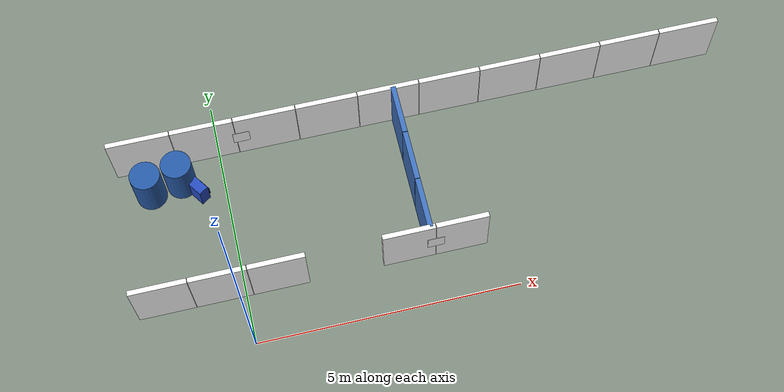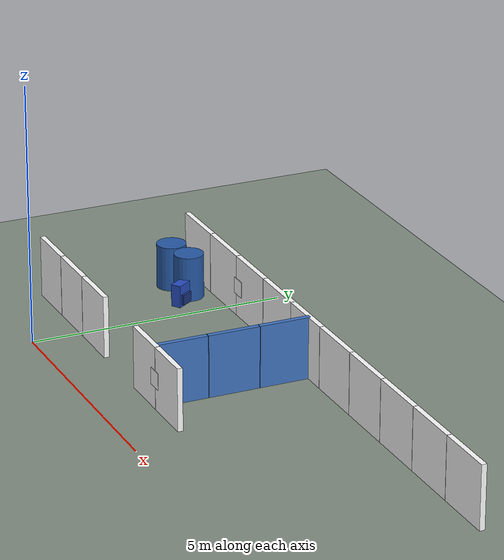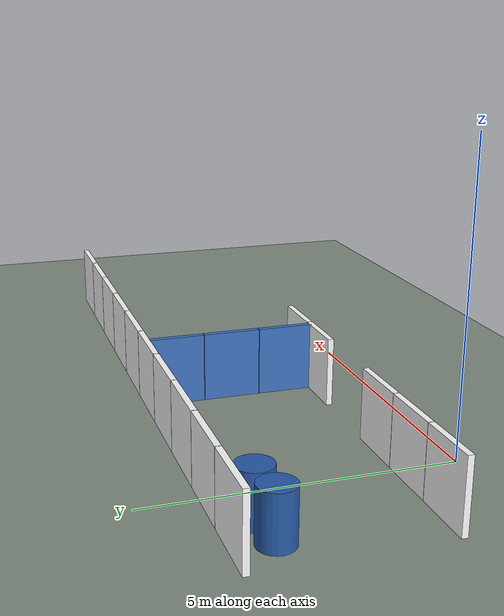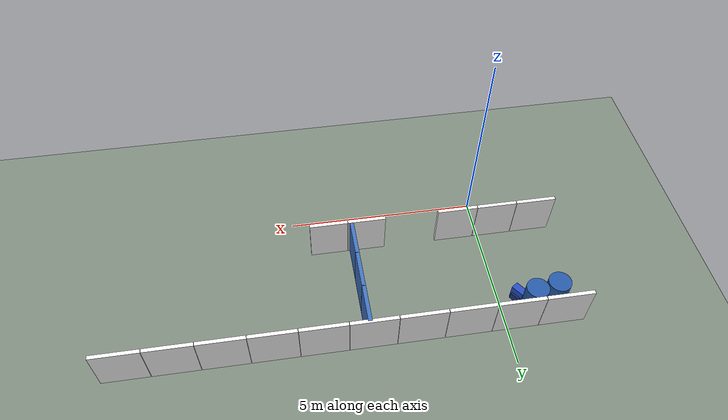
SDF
<sdf version="1.9">
 <world name="rescue_maze">
  <model name="ground_plane">
   <static>true</static>
   <link name="link">
    <collision name="collision">
     <geometry><plane><normal>0 0 1</normal><size>40 40</size></plane></geometry>
    </collision>
    <visual name="visual">
     <geometry><plane><normal>0 0 1</normal><size>40 40</size></plane></geometry>
     <material><ambient>0.5 0.55 0.5 1</ambient><diffuse>0.5 0.55 0.5 1</diffuse></material>
    </visual>
   </link>
  </model>
  <model name="wall_0">
   <static>true</static>
   <pose>4.000 4.000 0.6 0 0 0.0000</pose>
   <link name="link">
    <collision name="collision"><geometry><box><size>12.000 0.1 1.2</size></box></geometry></collision>
    <visual name="panel_0">
     <pose>-5.400 0 0 0 0 0</pose>
     <geometry><box><size>1.190 0.1 1.2</size></box></geometry>
     <material>
      <diffuse>1 1 1 1</diffuse>
      <specular>0.1 0.1 0.1 1</specular>
      <pbr>
       <metal><albedo_map>textures/plywood.jpg</albedo_map><roughness>0.9</roughness><metalness>0</metalness></metal>
      </pbr>
     </material>
    </visual>
    <visual name="panel_1">
     <pose>-4.200 0 0 0 0 0</pose>
     <geometry><box><size>1.190 0.1 1.2</size></box></geometry>
     <material>
      <diffuse>1 1 1 1</diffuse>
      <specular>0.1 0.1 0.1 1</specular>
      <pbr>
       <metal><albedo_map>textures/plywood.jpg</albedo_map><roughness>0.9</roughness><metalness>0</metalness></metal>
      </pbr>
     </material>
    </visual>
    <visual name="panel_2">
     <pose>-3.000 0 0 0 0 0</pose>
     <geometry><box><size>1.190 0.1 1.2</size></box></geometry>
     <material>
      <diffuse>1 1 1 1</diffuse>
      <specular>0.1 0.1 0.1 1</specular>
      <pbr>
       <metal><albedo_map>textures/plywood.jpg</albedo_map><roughness>0.9</roughness><metalness>0</metalness></metal>
      </pbr>
     </material>
    </visual>
    <visual name="panel_3">
     <pose>-1.800 0 0 0 0 0</pose>
     <geometry><box><size>1.190 0.1 1.2</size></box></geometry>
     <material>
      <diffuse>1 1 1 1</diffuse>
      <specular>0.1 0.1 0.1 1</specular>
      <pbr>
       <metal><albedo_map>textures/plywood.jpg</albedo_map><roughness>0.9</roughness><metalness>0</metalness></metal>
      </pbr>
     </material>
    </visual>
    <visual name="panel_4">
     <pose>-0.600 0 0 0 0 0</pose>
     <geometry><box><size>1.190 0.1 1.2</size></box></geometry>
     <material>
      <diffuse>1 1 1 1</diffuse>
      <specular>0.1 0.1 0.1 1</specular>
      <pbr>
       <metal><albedo_map>textures/plywood.jpg</albedo_map><roughness>0.9</roughness><metalness>0</metalness></metal>
      </pbr>
     </material>
    </visual>
    <visual name="panel_5">
     <pose>0.600 0 0 0 0 0</pose>
     <geometry><box><size>1.190 0.1 1.2</size></box></geometry>
     <material>
      <diffuse>1 1 1 1</diffuse>
      <specular>0.1 0.1 0.1 1</specular>
      <pbr>
       <metal><albedo_map>textures/plywood.jpg</albedo_map><roughness>0.9</roughness><metalness>0</metalness></metal>
      </pbr>
     </material>
    </visual>
    <visual name="panel_6">
     <pose>1.800 0 0 0 0 0</pose>
     <geometry><box><size>1.190 0.1 1.2</size></box></geometry>
     <material>
      <diffuse>1 1 1 1</diffuse>
      <specular>0.1 0.1 0.1 1</specular>
      <pbr>
       <metal><albedo_map>textures/plywood.jpg</albedo_map><roughness>0.9</roughness><metalness>0</metalness></metal>
      </pbr>
     </material>
    </visual>
    <visual name="panel_7">
     <pose>3.000 0 0 0 0 0</pose>
     <geometry><box><size>1.190 0.1 1.2</size></box></geometry>
     <material>
      <diffuse>1 1 1 1</diffuse>
      <specular>0.1 0.1 0.1 1</specular>
      <pbr>
       <metal><albedo_map>textures/plywood.jpg</albedo_map><roughness>0.9</roughness><metalness>0</metalness></metal>
      </pbr>
     </material>
    </visual>
    <visual name="panel_8">
     <pose>4.200 0 0 0 0 0</pose>
     <geometry><box><size>1.190 0.1 1.2</size></box></geometry>
     <material>
      <diffuse>1 1 1 1</diffuse>
      <specular>0.1 0.1 0.1 1</specular>
      <pbr>
       <metal><albedo_map>textures/plywood.jpg</albedo_map><roughness>0.9</roughness><metalness>0</metalness></metal>
      </pbr>
     </material>
    </visual>
    <visual name="panel_9">
     <pose>5.400 0 0 0 0 0</pose>
     <geometry><box><size>1.190 0.1 1.2</size></box></geometry>
     <material>
      <diffuse>1 1 1 1</diffuse>
      <specular>0.1 0.1 0.1 1</specular>
      <pbr>
       <metal><albedo_map>textures/plywood.jpg</albedo_map><roughness>0.9</roughness><metalness>0</metalness></metal>
      </pbr>
     </material>
    </visual>
   </link>
  </model>
  <model name="wall_4">
   <static>true</static>
   <pose>-0.400 1.000 0.6 0 0 0.0000</pose>
   <link name="link">
    <collision name="collision"><geometry><box><size>3.200 0.1 1.2</size></box></geometry></collision>
    <visual name="panel_0">
     <pose>-1.067 0 0 0 0 0</pose>
     <geometry><box><size>1.057 0.1 1.2</size></box></geometry>
     <material>
      <diffuse>1 1 1 1</diffuse>
      <specular>0.1 0.1 0.1 1</specular>
      <pbr>
       <metal><albedo_map>textures/plywood.jpg</albedo_map><roughness>0.9</roughness><metalness>0</metalness></metal>
      </pbr>
     </material>
    </visual>
    <visual name="panel_1">
     <geometry><box><size>1.057 0.1 1.2</size></box></geometry>
     <material>
      <diffuse>1 1 1 1</diffuse>
      <specular>0.1 0.1 0.1 1</specular>
      <pbr>
       <metal><albedo_map>textures/plywood.jpg</albedo_map><roughness>0.9</roughness><metalness>0</metalness></metal>
      </pbr>
     </material>
    </visual>
    <visual name="panel_2">
     <pose>1.067 0 0 0 0 0</pose>
     <geometry><box><size>1.057 0.1 1.2</size></box></geometry>
     <material>
      <diffuse>1 1 1 1</diffuse>
      <specular>0.1 0.1 0.1 1</specular>
      <pbr>
       <metal><albedo_map>textures/plywood.jpg</albedo_map><roughness>0.9</roughness><metalness>0</metalness></metal>
      </pbr>
     </material>
    </visual>
   </link>
  </model>
  <model name="wall_5">
   <static>true</static>
   <pose>3.600 1.000 0.6 0 0 0.0000</pose>
   <link name="link">
    <collision name="collision"><geometry><box><size>2.000 0.1 1.2</size></box></geometry></collision>
    <visual name="panel_0">
     <pose>-0.500 0 0 0 0 0</pose>
     <geometry><box><size>0.990 0.1 1.2</size></box></geometry>
     <material>
      <diffuse>1 1 1 1</diffuse>
      <specular>0.1 0.1 0.1 1</specular>
      <pbr>
       <metal><albedo_map>textures/plywood.jpg</albedo_map><roughness>0.9</roughness><metalness>0</metalness></metal>
      </pbr>
     </material>
    </visual>
    <visual name="panel_1">
     <pose>0.500 0 0 0 0 0</pose>
     <geometry><box><size>0.990 0.1 1.2</size></box></geometry>
     <material>
      <diffuse>1 1 1 1</diffuse>
      <specular>0.1 0.1 0.1 1</specular>
      <pbr>
       <metal><albedo_map>textures/plywood.jpg</albedo_map><roughness>0.9</roughness><metalness>0</metalness></metal>
      </pbr>
     </material>
    </visual>
   </link>
  </model>
  <model name="wall_10">
   <static>true</static>
   <pose>3.500 2.500 0.6 0 0 1.5708</pose>
   <link name="link">
    <collision name="collision"><geometry><box><size>3.000 0.1 1.2</size></box></geometry></collision>
    <visual name="panel_0">
     <pose>-1.000 0 0 0 0 0</pose>
     <geometry><box><size>0.990 0.1 1.2</size></box></geometry>
     <material>
      <ambient>0.25 0.45 0.75 1</ambient>
      <diffuse>0.25 0.45 0.75 1</diffuse>
      <specular>0.1 0.1 0.1 1</specular>
     </material>
    </visual>
    <visual name="panel_1">
     <geometry><box><size>0.990 0.1 1.2</size></box></geometry>
     <material>
      <ambient>0.25 0.45 0.75 1</ambient>
      <diffuse>0.25 0.45 0.75 1</diffuse>
      <specular>0.1 0.1 0.1 1</specular>
     </material>
    </visual>
    <visual name="panel_2">
     <pose>1.000 0 0 0 0 0</pose>
     <geometry><box><size>0.990 0.1 1.2</size></box></geometry>
     <material>
      <ambient>0.25 0.45 0.75 1</ambient>
      <diffuse>0.25 0.45 0.75 1</diffuse>
      <specular>0.1 0.1 0.1 1</specular>
     </material>
    </visual>
   </link>
  </model>
  <model name="sign_0_hazmat_flammable_gas">
   <static>true</static>
   <pose>3.6 0.94 0.6 0 0 -1.5708</pose>
   <link name="link">
    <visual name="board">
     <geometry><box><size>0.008 0.32 0.32</size></box></geometry>
     <material>
      <diffuse>1 1 1 1</diffuse>
      <specular>0.1 0.1 0.1 1</specular>
      <pbr>
       <metal>
        <albedo_map>textures/hazmat_flammable_gas.png</albedo_map>
        <roughness>0.9</roughness>
        <metalness>0</metalness>
       </metal>
      </pbr>
     </material>
    </visual>
   </link>
  </model>
  <model name="sign_6_hazmat_non_flammable_gas">
   <static>true</static>
   <pose>0.5 3.94 0.6 0 0 -1.5708</pose>
   <link name="link">
    <visual name="board">
     <geometry><box><size>0.008 0.32 0.32</size></box></geometry>
     <material>
      <diffuse>1 1 1 1</diffuse>
      <specular>0.1 0.1 0.1 1</specular>
      <pbr>
       <metal>
        <albedo_map>textures/hazmat_non_flammable_gas.png</albedo_map>
        <roughness>0.9</roughness>
        <metalness>0</metalness>
       </metal>
      </pbr>
     </material>
    </visual>
   </link>
  </model>
  <model name="backpack">
   <static>true</static>
   <pose>-0.5 3.2 0 0 0 0.6</pose>
   <link name="link">
    <collision name="bag_collision">
     <pose>0 0 0.22 0 0 0</pose>
     <geometry><box><size>0.2 0.34 0.44</size></box></geometry>
    </collision>
    <visual name="bag">
     <pose>0 0 0.22 0 0 0</pose>
     <geometry><box><size>0.2 0.34 0.44</size></box></geometry>
     <material>
      <ambient>0.15 0.3 0.75 1</ambient>
      <diffuse>0.15 0.3 0.75 1</diffuse>
      <specular>0.1 0.1 0.1 1</specular>
     </material>
    </visual>
    <collision name="pocket_collision">
     <pose>0.12 0 0.15 0 0 0</pose>
     <geometry><box><size>0.06 0.26 0.2</size></box></geometry>
    </collision>
    <visual name="pocket">
     <pose>0.12 0 0.15 0 0 0</pose>
     <geometry><box><size>0.06 0.26 0.2</size></box></geometry>
     <material>
      <ambient>0.1 0.2 0.5 1</ambient>
      <diffuse>0.1 0.2 0.5 1</diffuse>
      <specular>0.1 0.1 0.1 1</specular>
     </material>
    </visual>
   </link>
  </model>
  <model name="barrel_1">
   <static>true</static>
   <pose>-1.4 3.4 0 0 0 0</pose>
   <link name="link">
    <collision name="barrel_collision">
     <pose>0 0 0.44 0 0 0</pose>
     <geometry><cylinder><radius>0.29</radius><length>0.88</length></cylinder></geometry>
    </collision>
    <visual name="barrel">
     <pose>0 0 0.44 0 0 0</pose>
     <geometry><cylinder><radius>0.29</radius><length>0.88</length></cylinder></geometry>
     <material>
      <ambient>0.15 0.35 0.65 1</ambient>
      <diffuse>0.15 0.35 0.65 1</diffuse>
      <specular>0.1 0.1 0.1 1</specular>
     </material>
    </visual>
   </link>
  </model>
  <model name="barrel_2">
   <static>true</static>
   <pose>-0.8 3.5 0 0 0 0</pose>
   <link name="link">
    <collision name="barrel_collision">
     <pose>0 0 0.44 0 0 0</pose>
     <geometry><cylinder><radius>0.29</radius><length>0.88</length></cylinder></geometry>
    </collision>
    <visual name="barrel">
     <pose>0 0 0.44 0 0 0</pose>
     <geometry><cylinder><radius>0.29</radius><length>0.88</length></cylinder></geometry>
     <material>
      <ambient>0.15 0.35 0.65 1</ambient>
      <diffuse>0.15 0.35 0.65 1</diffuse>
      <specular>0.1 0.1 0.1 1</specular>
     </material>
    </visual>
   </link>
  </model>
 </world>
</sdf>
